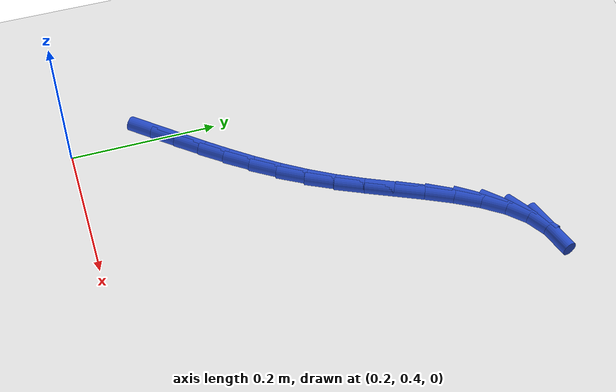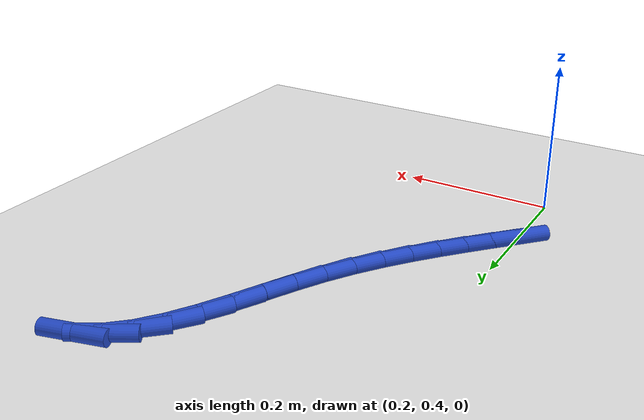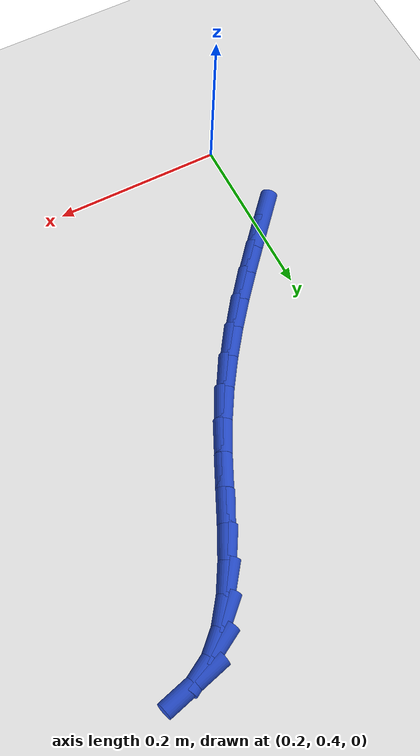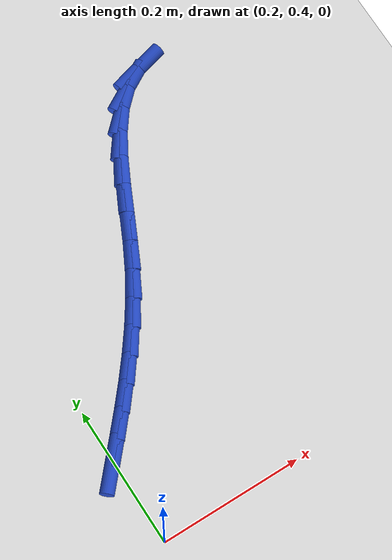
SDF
<sdf version="1.6">
 <world name="default">
  <model name="ground_plane">
   <static>1</static>
   <link name="link">
    <collision name="collision">
     <geometry><plane><normal>0 0 1</normal><size>100 100</size></plane></geometry>
     <surface><friction><ode><mu>100</mu><mu2>50</mu2></ode></friction></surface>
    </collision>
    <visual name="visual">
     <cast_shadows>0</cast_shadows>
     <geometry><plane><normal>0 0 1</normal><size>100 100</size></plane></geometry>
     <material>
      <script><uri>file://media/materials/scripts/gazebo.material</uri><name>Gazebo/WhiteGlow</name></script>
     </material>
    </visual>
   </link>
  </model>
  <model name="line">
   <link name="link_16">
    <pose>0.19553457957363465 0.5190841733432762 0.01 0 1.57 0.8409933954790574</pose>
    <collision name="collision">
     <geometry><cylinder><radius>0.01</radius><length>0.08</length></cylinder></geometry>
    </collision>
    <visual name="visual">
     <material>
      <script><name>Gazebo/Blue</name><uri>file://media/materials/scripts/gazebo.material</uri></script>
     </material>
     <geometry><cylinder><radius>0.01</radius><length>0.08</length></cylinder></geometry>
    </visual>
   </link>
   <link name="link_17">
    <pose>0.2196600651547077 0.5460532004537018 0.01 0 1.57 0.8477831536583295</pose>
    <collision name="collision">
     <geometry><cylinder><radius>0.01</radius><length>0.08</length></cylinder></geometry>
    </collision>
    <visual name="visual">
     <material>
      <script><name>Gazebo/Blue</name><uri>file://media/materials/scripts/gazebo.material</uri></script>
     </material>
     <geometry><cylinder><radius>0.01</radius><length>0.08</length></cylinder></geometry>
    </visual>
   </link>
   <link name="link_18">
    <pose>0.24386222499240576 0.5734804451660215 0.01 0 1.57 0.8647868487878555</pose>
    <collision name="collision">
     <geometry><cylinder><radius>0.01</radius><length>0.08</length></cylinder></geometry>
    </collision>
    <visual name="visual">
     <material>
      <script><name>Gazebo/Blue</name><uri>file://media/materials/scripts/gazebo.material</uri></script>
     </material>
     <geometry><cylinder><radius>0.01</radius><length>0.08</length></cylinder></geometry>
    </visual>
   </link>
   <link name="link_19">
    <pose>0.2678555288194233 0.6016213308950522 0.01 0 1.57 0.8916521265940476</pose>
    <collision name="collision">
     <geometry><cylinder><radius>0.01</radius><length>0.08</length></cylinder></geometry>
    </collision>
    <visual name="visual">
     <material>
      <script><name>Gazebo/Blue</name><uri>file://media/materials/scripts/gazebo.material</uri></script>
     </material>
     <geometry><cylinder><radius>0.01</radius><length>0.08</length></cylinder></geometry>
    </visual>
   </link>
   <link name="link_20">
    <pose>0.2913544463684551 0.6307312810556109 0.01 0 1.57 0.9279670571064371</pose>
    <collision name="collision">
     <geometry><cylinder><radius>0.01</radius><length>0.08</length></cylinder></geometry>
    </collision>
    <visual name="visual">
     <material>
      <script><name>Gazebo/Blue</name><uri>file://media/materials/scripts/gazebo.material</uri></script>
     </material>
     <geometry><cylinder><radius>0.01</radius><length>0.08</length></cylinder></geometry>
    </visual>
   </link>
   <link name="link_21">
    <pose>0.31407344737219567 0.6610657190625147 0.01 0 1.57 0.9731942881148808</pose>
    <collision name="collision">
     <geometry><cylinder><radius>0.01</radius><length>0.08</length></cylinder></geometry>
    </collision>
    <visual name="visual">
     <material>
      <script><name>Gazebo/Blue</name><uri>file://media/materials/scripts/gazebo.material</uri></script>
     </material>
     <geometry><cylinder><radius>0.01</radius><length>0.08</length></cylinder></geometry>
    </visual>
   </link>
   <link name="link_22">
    <pose>0.3357270015633396 0.6928800683305802 0.01 0 1.57 1.0265989722636952</pose>
    <collision name="collision">
     <geometry><cylinder><radius>0.01</radius><length>0.08</length></cylinder></geometry>
    </collision>
    <visual name="visual">
     <material>
      <script><name>Gazebo/Blue</name><uri>file://media/materials/scripts/gazebo.material</uri></script>
     </material>
     <geometry><cylinder><radius>0.01</radius><length>0.08</length></cylinder></geometry>
    </visual>
   </link>
   <link name="link_23">
    <pose>0.3560295786745813 0.726429752274624 0.01 0 1.57 1.0840526726214288</pose>
    <collision name="collision">
     <geometry><cylinder><radius>0.01</radius><length>0.08</length></cylinder></geometry>
    </collision>
    <visual name="visual">
     <material>
      <script><name>Gazebo/Blue</name><uri>file://media/materials/scripts/gazebo.material</uri></script>
     </material>
     <geometry><cylinder><radius>0.01</radius><length>0.08</length></cylinder></geometry>
    </visual>
   </link>
   <link name="link_24">
    <pose>0.37477418977687776 0.7618495649350913 0.01 0 1.57 1.1207140324198142</pose>
    <collision name="collision">
     <geometry><cylinder><radius>0.01</radius><length>0.08</length></cylinder></geometry>
    </collision>
    <visual name="visual">
     <material>
      <script><name>Gazebo/Blue</name><uri>file://media/materials/scripts/gazebo.material</uri></script>
     </material>
     <geometry><cylinder><radius>0.01</radius><length>0.08</length></cylinder></geometry>
    </visual>
   </link>
   <link name="link_25">
    <pose>0.39238662929740226 0.7983024266606588 0.01 0 1.57 1.1267578113163133</pose>
    <collision name="collision">
     <geometry><cylinder><radius>0.01</radius><length>0.08</length></cylinder></geometry>
    </collision>
    <visual name="visual">
     <material>
      <script><name>Gazebo/Blue</name><uri>file://media/materials/scripts/gazebo.material</uri></script>
     </material>
     <geometry><cylinder><radius>0.01</radius><length>0.08</length></cylinder></geometry>
    </visual>
   </link>
   <link name="link_26">
    <pose>0.4095981545500886 0.834482106169295 0.01 0 1.57 1.1014943201288458</pose>
    <collision name="collision">
     <geometry><cylinder><radius>0.01</radius><length>0.08</length></cylinder></geometry>
    </collision>
    <visual name="visual">
     <material>
      <script><name>Gazebo/Blue</name><uri>file://media/materials/scripts/gazebo.material</uri></script>
     </material>
     <geometry><cylinder><radius>0.01</radius><length>0.08</length></cylinder></geometry>
    </visual>
   </link>
   <link name="link_27">
    <pose>0.42714199902810224 0.8690793370223263 0.01 0 1.57 1.0400313228265887</pose>
    <collision name="collision">
     <geometry><cylinder><radius>0.01</radius><length>0.08</length></cylinder></geometry>
    </collision>
    <visual name="visual">
     <material>
      <script><name>Gazebo/Blue</name><uri>file://media/materials/scripts/gazebo.material</uri></script>
     </material>
     <geometry><cylinder><radius>0.01</radius><length>0.08</length></cylinder></geometry>
    </visual>
   </link>
   <link name="link_28">
    <pose>0.44575139622460985 0.9007848527810798 0.01 0 1.57 0.9324391531395965</pose>
    <collision name="collision">
     <geometry><cylinder><radius>0.01</radius><length>0.08</length></cylinder></geometry>
    </collision>
    <visual name="visual">
     <material>
      <script><name>Gazebo/Blue</name><uri>file://media/materials/scripts/gazebo.material</uri></script>
     </material>
     <geometry><cylinder><radius>0.01</radius><length>0.08</length></cylinder></geometry>
    </visual>
   </link>
   <link name="link_29">
    <pose>0.46615957963277754 0.9282893870068827 0.01 0 1.57 0.7643502515814047</pose>
    <collision name="collision">
     <geometry><cylinder><radius>0.01</radius><length>0.08</length></cylinder></geometry>
    </collision>
    <visual name="visual">
     <material>
      <script><name>Gazebo/Blue</name><uri>file://media/materials/scripts/gazebo.material</uri></script>
     </material>
     <geometry><cylinder><radius>0.01</radius><length>0.08</length></cylinder></geometry>
    </visual>
   </link>
   <link name="link_30">
    <pose>0.4890997827457713 0.9502836732610612 0.01 0 1.57 0.5253221587768561</pose>
    <collision name="collision">
     <geometry><cylinder><radius>0.01</radius><length>0.08</length></cylinder></geometry>
    </collision>
    <visual name="visual">
     <material>
      <script><name>Gazebo/Blue</name><uri>file://media/materials/scripts/gazebo.material</uri></script>
     </material>
     <geometry><cylinder><radius>0.01</radius><length>0.08</length></cylinder></geometry>
    </visual>
   </link>
   <link name="link_31">
    <pose>0.5153000025689671 0.9654706412750996 0.01 0 1.57 0.26630773554642556</pose>
    <collision name="collision">
     <geometry><cylinder><radius>0.01</radius><length>0.08</length></cylinder></geometry>
    </collision>
    <visual name="visual">
     <material>
      <script><name>Gazebo/Blue</name><uri>file://media/materials/scripts/gazebo.material</uri></script>
     </material>
     <geometry><cylinder><radius>0.01</radius><length>0.08</length></cylinder></geometry>
    </visual>
   </link>
  </model>
 </world>
</sdf>
